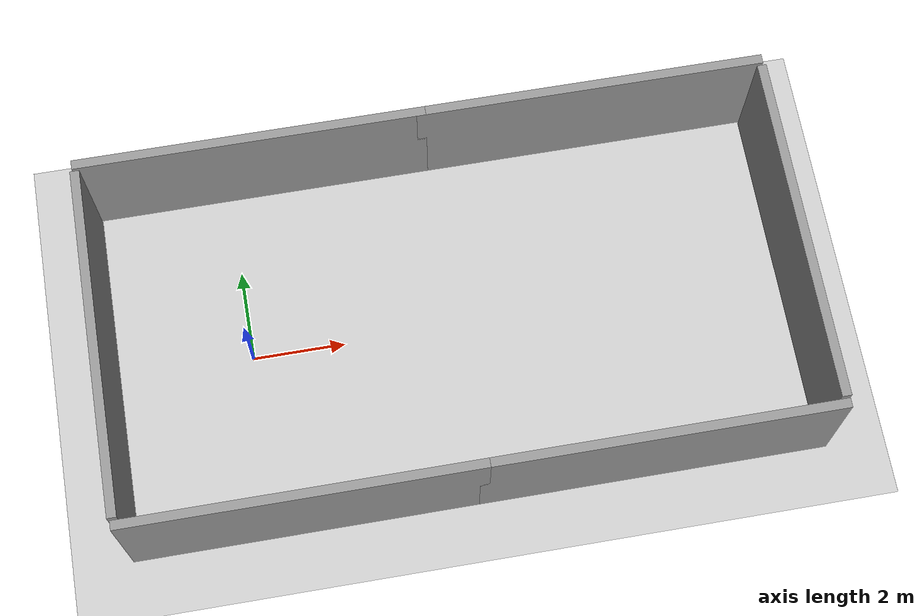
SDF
<sdf version="1.4">
 <world name="default">
  <include><uri>model://ground_plane</uri></include>
  <include><uri>model://sun</uri></include>
  <include><uri>model://grey_wall</uri><name>wall_back</name><pose>-3.0 0 0 0 0 1.57</pose></include>
  <include><uri>model://grey_wall</uri><name>wall_left_1</name><pose>0.7 3.9 0 0 0 0</pose></include>
  <include><uri>model://grey_wall</uri><name>wall_right_1</name><pose>0.7 -3.9 0 0 0 0</pose></include>
  <include><uri>model://grey_wall</uri><name>wall_left_2</name><pose>8 3.9 0 0 0 0</pose></include>
  <include><uri>model://grey_wall</uri><name>wall_right_2</name><pose>8 -3.9 0 0 0 0</pose></include>
  <include><uri>model://grey_wall</uri><name>wall_front</name><pose>11.7 0 0 0 0 1.57</pose></include>
 </world>
</sdf>

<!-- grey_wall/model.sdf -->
<sdf version="1.5">
  <model name="grey_wall">
    <static>true</static>
    <link name="link">
      <pose>0 0 1.4 0 0 0</pose>
      <collision name="collision">
        <geometry>
          <box>
            <size>7.5 0.2 2.8</size>
          </box>
        </geometry>
      </collision>
      <visual name="visual">
        <cast_shadows>false</cast_shadows>
        <geometry>
          <box>
            <size>7.5 0.2 2.8</size>
          </box>
        </geometry>
        <material>
          <script>
            <uri>model://../model_source/models/grey_wall/materials/scripts</uri>
            <uri>model://../model_source/models/grey_wall/materials/textures</uri>
            <name>vrc/grey_wall</name>
          </script>
        </material>
      </visual>
    </link>
  </model>
</sdf>
